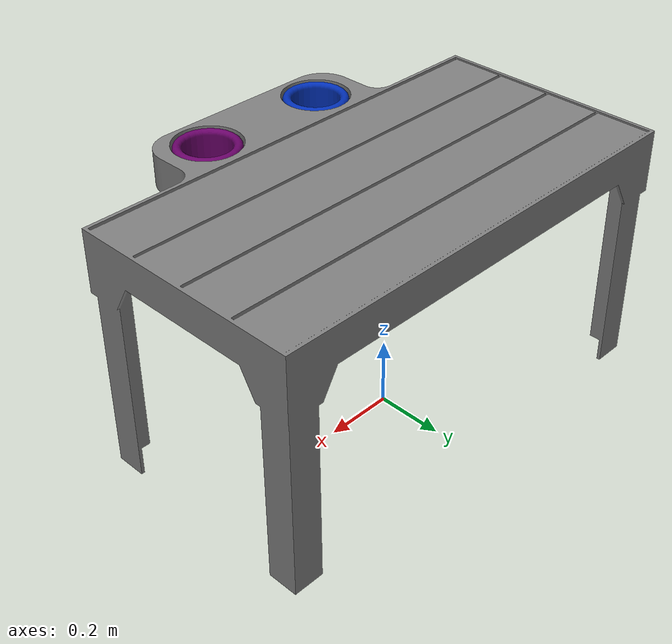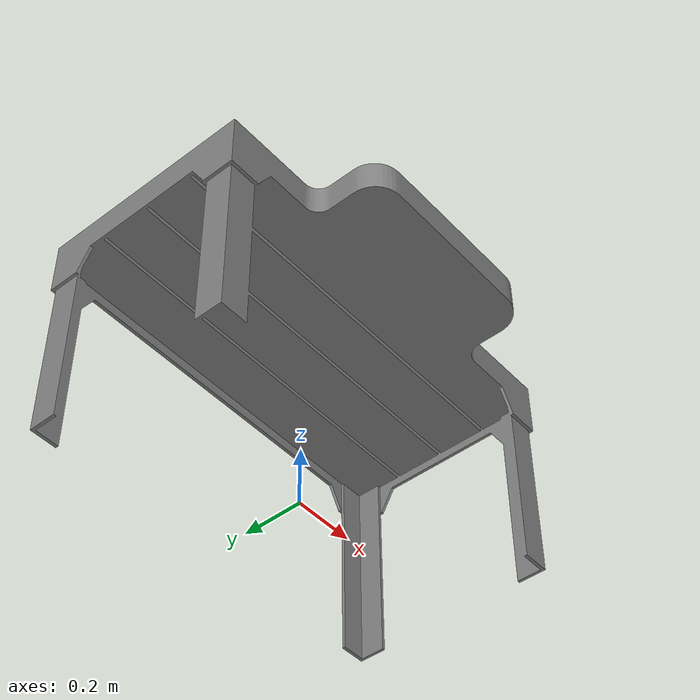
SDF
<?xml version="1.0" ?>
<sdf version="1.6">
  <model name="kit_tray_table">
    <static>true</static>

    <link name="kit_tray_table_link">
      <visual name="table">
        <geometry>
          <mesh>
            <uri>model://kit_tray_table/meshes/kit_tray_table.stl</uri>
          </mesh>
        </geometry>
        <material>
          <ambient>0.5 0.5 0.5 1.0</ambient>
          <diffuse>0.5 0.5 0.5 1.0</diffuse>
        </material>
      </visual>

      <visual name="tool_changer_1">
        <geometry>
          <mesh>
            <uri>model://kit_tray_table/meshes/tool_changer_1.stl</uri>
          </mesh>
        </geometry>
        <material>
          <ambient>0.00 0.18 0.70 1.0</ambient>
          <diffuse>0.00 0.18 0.70 1.0</diffuse>
        </material>
      </visual>

      <visual name="tool_changer_2">
        <geometry>
          <mesh>
            <uri>model://kit_tray_table/meshes/tool_changer_2.stl</uri>
          </mesh>
        </geometry>
        <material>
          <ambient>0.4 0.0 0.4 1.0</ambient>
          <diffuse>0.4 0.0 0.4 1.0</diffuse>
        </material>
      </visual>

      <collision name="table_exterior">
        <geometry>
          <mesh>
            <uri>model://kit_tray_table/meshes/table_collision.stl</uri>
          </mesh>
        </geometry>
      </collision>

      <collision name="table_top">
        <pose>0 0 0.7 0 0 0</pose>
        <geometry>
          <box>
            <size>1.34 0.68 0.05</size>
          </box>
        </geometry>
      </collision>

      <collision name="tool_changer_1_collision">
        <geometry>
          <mesh>
            <uri>model://kit_tray_table/meshes/tool_changer_1.stl</uri>
          </mesh>
        </geometry>
      </collision>

      <collision name="tool_changer_2_collision">
        <geometry>
          <mesh>
            <uri>model://kit_tray_table/meshes/tool_changer_2.stl</uri>
          </mesh>
        </geometry>
      </collision>

    </link>
  </model>
</sdf>
